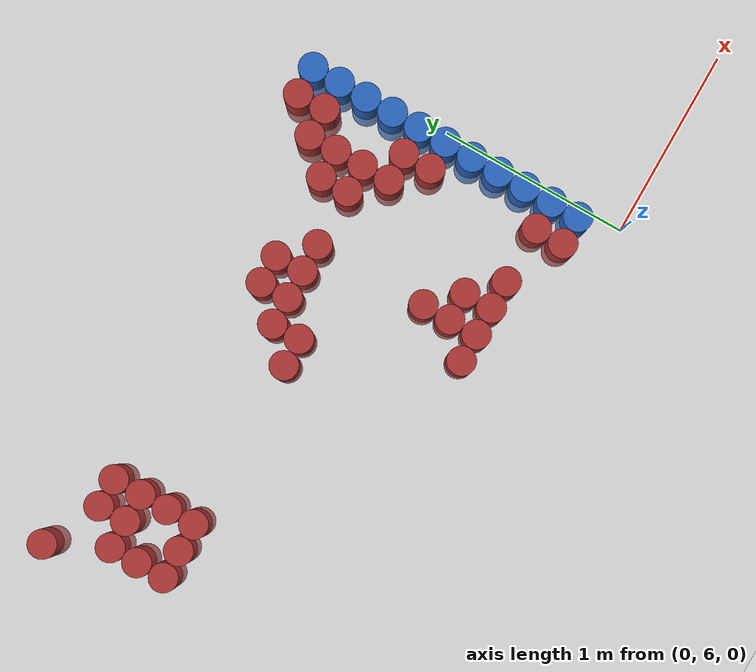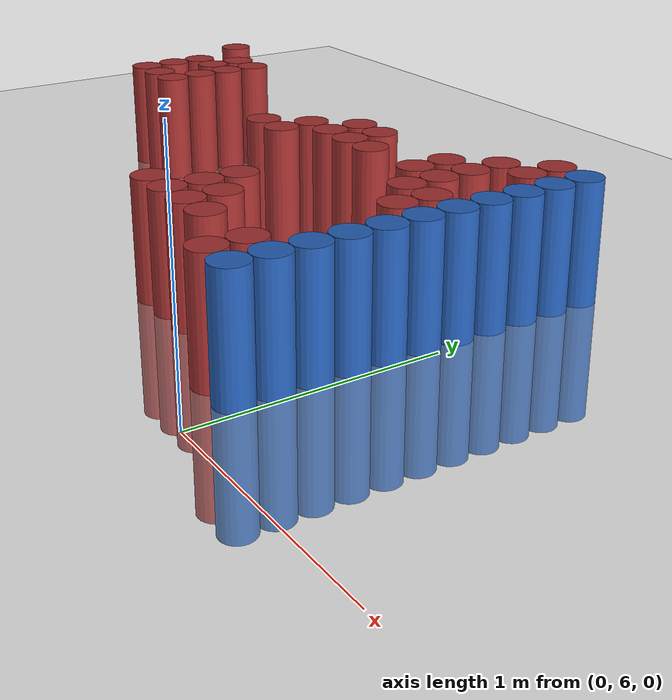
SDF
<sdf version="1.6">
 <world name="default">
  <model name="ground_plane">
   <static>1</static>
   <link name="link">
    <collision name="collision">
     <geometry><plane><normal>0 0 1</normal><size>100 100</size></plane></geometry>
     <surface><friction><ode><mu>100</mu><mu2>50</mu2></ode></friction></surface>
    </collision>
    <visual name="visual">
     <cast_shadows>0</cast_shadows>
     <geometry><plane><normal>0 0 1</normal><size>100 100</size></plane></geometry>
     <material>
      <script><uri>file://media/materials/scripts/gazebo.material</uri><name>Gazebo/Grey</name></script>
     </material>
    </visual>
   </link>
  </model>
  <model name="unit_cylinder_216">
   <static>1</static>
   <pose>-2.775000 7.725000 0.000000 0.000000 0.000000 0.000000</pose>
   <link name="link">
    <inertial>
     <mass>1</mass>
     <inertia><ixx>0.145833</ixx><ixy>0</ixy><ixz>0</ixz><iyy>0.145833</iyy><iyz>0</iyz><izz>0.125</izz></inertia>
    </inertial>
    <collision name="collision">
     <geometry><cylinder><radius>0.075000</radius><length>1</length></cylinder></geometry>
    </collision>
    <visual name="visual">
     <geometry><cylinder><radius>0.075000</radius><length>1</length></cylinder></geometry>
     <material>
      <ambient>0.648000 0.192000 0.192000 1</ambient>
      <diffuse>0.648000 0.192000 0.192000 1</diffuse>
     </material>
     <material>
      <script><name>Gazebo/Grey</name><uri>file://media/materials/scripts/gazebo.material</uri></script>
     </material>
    </visual>
   </link>
  </model>
  <model name="unit_cylinder_218">
   <static>1</static>
   <pose>-2.625000 7.125000 0.000000 0.000000 0.000000 0.000000</pose>
   <link name="link">
    <inertial>
     <mass>1</mass>
     <inertia><ixx>0.145833</ixx><ixy>0</ixy><ixz>0</ixz><iyy>0.145833</iyy><iyz>0</iyz><izz>0.125</izz></inertia>
    </inertial>
    <collision name="collision">
     <geometry><cylinder><radius>0.075000</radius><length>1</length></cylinder></geometry>
    </collision>
    <visual name="visual">
     <geometry><cylinder><radius>0.075000</radius><length>1</length></cylinder></geometry>
     <material>
      <ambient>0.648000 0.192000 0.192000 1</ambient>
      <diffuse>0.648000 0.192000 0.192000 1</diffuse>
     </material>
     <material>
      <script><name>Gazebo/Grey</name><uri>file://media/materials/scripts/gazebo.material</uri></script>
     </material>
    </visual>
   </link>
  </model>
  <model name="unit_cylinder_219">
   <static>1</static>
   <pose>-2.625000 7.275000 0.000000 0.000000 0.000000 0.000000</pose>
   <link name="link">
    <inertial>
     <mass>1</mass>
     <inertia><ixx>0.145833</ixx><ixy>0</ixy><ixz>0</ixz><iyy>0.145833</iyy><iyz>0</iyz><izz>0.125</izz></inertia>
    </inertial>
    <collision name="collision">
     <geometry><cylinder><radius>0.075000</radius><length>1</length></cylinder></geometry>
    </collision>
    <visual name="visual">
     <geometry><cylinder><radius>0.075000</radius><length>1</length></cylinder></geometry>
     <material>
      <ambient>0.648000 0.192000 0.192000 1</ambient>
      <diffuse>0.648000 0.192000 0.192000 1</diffuse>
     </material>
     <material>
      <script><name>Gazebo/Grey</name><uri>file://media/materials/scripts/gazebo.material</uri></script>
     </material>
    </visual>
   </link>
  </model>
  <model name="unit_cylinder_220">
   <static>1</static>
   <pose>-2.625000 7.425000 0.000000 0.000000 0.000000 0.000000</pose>
   <link name="link">
    <inertial>
     <mass>1</mass>
     <inertia><ixx>0.145833</ixx><ixy>0</ixy><ixz>0</ixz><iyy>0.145833</iyy><iyz>0</iyz><izz>0.125</izz></inertia>
    </inertial>
    <collision name="collision">
     <geometry><cylinder><radius>0.075000</radius><length>1</length></cylinder></geometry>
    </collision>
    <visual name="visual">
     <geometry><cylinder><radius>0.075000</radius><length>1</length></cylinder></geometry>
     <material>
      <ambient>0.648000 0.192000 0.192000 1</ambient>
      <diffuse>0.648000 0.192000 0.192000 1</diffuse>
     </material>
     <material>
      <script><name>Gazebo/Grey</name><uri>file://media/materials/scripts/gazebo.material</uri></script>
     </material>
    </visual>
   </link>
  </model>
  <model name="unit_cylinder_223">
   <static>1</static>
   <pose>-2.475000 7.125000 0.000000 0.000000 0.000000 0.000000</pose>
   <link name="link">
    <inertial>
     <mass>1</mass>
     <inertia><ixx>0.145833</ixx><ixy>0</ixy><ixz>0</ixz><iyy>0.145833</iyy><iyz>0</iyz><izz>0.125</izz></inertia>
    </inertial>
    <collision name="collision">
     <geometry><cylinder><radius>0.075000</radius><length>1</length></cylinder></geometry>
    </collision>
    <visual name="visual">
     <geometry><cylinder><radius>0.075000</radius><length>1</length></cylinder></geometry>
     <material>
      <ambient>0.648000 0.192000 0.192000 1</ambient>
      <diffuse>0.648000 0.192000 0.192000 1</diffuse>
     </material>
     <material>
      <script><name>Gazebo/Grey</name><uri>file://media/materials/scripts/gazebo.material</uri></script>
     </material>
    </visual>
   </link>
  </model>
  <model name="unit_cylinder_224">
   <static>1</static>
   <pose>-2.475000 7.425000 0.000000 0.000000 0.000000 0.000000</pose>
   <link name="link">
    <inertial>
     <mass>1</mass>
     <inertia><ixx>0.145833</ixx><ixy>0</ixy><ixz>0</ixz><iyy>0.145833</iyy><iyz>0</iyz><izz>0.125</izz></inertia>
    </inertial>
    <collision name="collision">
     <geometry><cylinder><radius>0.075000</radius><length>1</length></cylinder></geometry>
    </collision>
    <visual name="visual">
     <geometry><cylinder><radius>0.075000</radius><length>1</length></cylinder></geometry>
     <material>
      <ambient>0.648000 0.192000 0.192000 1</ambient>
      <diffuse>0.648000 0.192000 0.192000 1</diffuse>
     </material>
     <material>
      <script><name>Gazebo/Grey</name><uri>file://media/materials/scripts/gazebo.material</uri></script>
     </material>
    </visual>
   </link>
  </model>
  <model name="unit_cylinder_225">
   <static>1</static>
   <pose>-2.475000 7.575000 0.000000 0.000000 0.000000 0.000000</pose>
   <link name="link">
    <inertial>
     <mass>1</mass>
     <inertia><ixx>0.145833</ixx><ixy>0</ixy><ixz>0</ixz><iyy>0.145833</iyy><iyz>0</iyz><izz>0.125</izz></inertia>
    </inertial>
    <collision name="collision">
     <geometry><cylinder><radius>0.075000</radius><length>1</length></cylinder></geometry>
    </collision>
    <visual name="visual">
     <geometry><cylinder><radius>0.075000</radius><length>1</length></cylinder></geometry>
     <material>
      <ambient>0.648000 0.192000 0.192000 1</ambient>
      <diffuse>0.648000 0.192000 0.192000 1</diffuse>
     </material>
     <material>
      <script><name>Gazebo/Grey</name><uri>file://media/materials/scripts/gazebo.material</uri></script>
     </material>
    </visual>
   </link>
  </model>
  <model name="unit_cylinder_230">
   <static>1</static>
   <pose>-2.325000 7.125000 0.000000 0.000000 0.000000 0.000000</pose>
   <link name="link">
    <inertial>
     <mass>1</mass>
     <inertia><ixx>0.145833</ixx><ixy>0</ixy><ixz>0</ixz><iyy>0.145833</iyy><iyz>0</iyz><izz>0.125</izz></inertia>
    </inertial>
    <collision name="collision">
     <geometry><cylinder><radius>0.075000</radius><length>1</length></cylinder></geometry>
    </collision>
    <visual name="visual">
     <geometry><cylinder><radius>0.075000</radius><length>1</length></cylinder></geometry>
     <material>
      <ambient>0.648000 0.192000 0.192000 1</ambient>
      <diffuse>0.648000 0.192000 0.192000 1</diffuse>
     </material>
     <material>
      <script><name>Gazebo/Grey</name><uri>file://media/materials/scripts/gazebo.material</uri></script>
     </material>
    </visual>
   </link>
  </model>
  <model name="unit_cylinder_231">
   <static>1</static>
   <pose>-2.325000 7.275000 0.000000 0.000000 0.000000 0.000000</pose>
   <link name="link">
    <inertial>
     <mass>1</mass>
     <inertia><ixx>0.145833</ixx><ixy>0</ixy><ixz>0</ixz><iyy>0.145833</iyy><iyz>0</iyz><izz>0.125</izz></inertia>
    </inertial>
    <collision name="collision">
     <geometry><cylinder><radius>0.075000</radius><length>1</length></cylinder></geometry>
    </collision>
    <visual name="visual">
     <geometry><cylinder><radius>0.075000</radius><length>1</length></cylinder></geometry>
     <material>
      <ambient>0.648000 0.192000 0.192000 1</ambient>
      <diffuse>0.648000 0.192000 0.192000 1</diffuse>
     </material>
     <material>
      <script><name>Gazebo/Grey</name><uri>file://media/materials/scripts/gazebo.material</uri></script>
     </material>
    </visual>
   </link>
  </model>
  <model name="unit_cylinder_232">
   <static>1</static>
   <pose>-2.325000 7.425000 0.000000 0.000000 0.000000 0.000000</pose>
   <link name="link">
    <inertial>
     <mass>1</mass>
     <inertia><ixx>0.145833</ixx><ixy>0</ixy><ixz>0</ixz><iyy>0.145833</iyy><iyz>0</iyz><izz>0.125</izz></inertia>
    </inertial>
    <collision name="collision">
     <geometry><cylinder><radius>0.075000</radius><length>1</length></cylinder></geometry>
    </collision>
    <visual name="visual">
     <geometry><cylinder><radius>0.075000</radius><length>1</length></cylinder></geometry>
     <material>
      <ambient>0.648000 0.192000 0.192000 1</ambient>
      <diffuse>0.648000 0.192000 0.192000 1</diffuse>
     </material>
     <material>
      <script><name>Gazebo/Grey</name><uri>file://media/materials/scripts/gazebo.material</uri></script>
     </material>
    </visual>
   </link>
  </model>
  <model name="unit_cylinder_233">
   <static>1</static>
   <pose>-2.325000 7.575000 0.000000 0.000000 0.000000 0.000000</pose>
   <link name="link">
    <inertial>
     <mass>1</mass>
     <inertia><ixx>0.145833</ixx><ixy>0</ixy><ixz>0</ixz><iyy>0.145833</iyy><iyz>0</iyz><izz>0.125</izz></inertia>
    </inertial>
    <collision name="collision">
     <geometry><cylinder><radius>0.075000</radius><length>1</length></cylinder></geometry>
    </collision>
    <visual name="visual">
     <geometry><cylinder><radius>0.075000</radius><length>1</length></cylinder></geometry>
     <material>
      <ambient>0.648000 0.192000 0.192000 1</ambient>
      <diffuse>0.648000 0.192000 0.192000 1</diffuse>
     </material>
     <material>
      <script><name>Gazebo/Grey</name><uri>file://media/materials/scripts/gazebo.material</uri></script>
     </material>
    </visual>
   </link>
  </model>
  <model name="unit_cylinder_253">
   <static>1</static>
   <pose>-1.425000 7.125000 0.000000 0.000000 0.000000 0.000000</pose>
   <link name="link">
    <inertial>
     <mass>1</mass>
     <inertia><ixx>0.145833</ixx><ixy>0</ixy><ixz>0</ixz><iyy>0.145833</iyy><iyz>0</iyz><izz>0.125</izz></inertia>
    </inertial>
    <collision name="collision">
     <geometry><cylinder><radius>0.075000</radius><length>1</length></cylinder></geometry>
    </collision>
    <visual name="visual">
     <geometry><cylinder><radius>0.075000</radius><length>1</length></cylinder></geometry>
     <material>
      <ambient>0.648000 0.192000 0.192000 1</ambient>
      <diffuse>0.648000 0.192000 0.192000 1</diffuse>
     </material>
     <material>
      <script><name>Gazebo/Grey</name><uri>file://media/materials/scripts/gazebo.material</uri></script>
     </material>
    </visual>
   </link>
  </model>
  <model name="unit_cylinder_256">
   <static>1</static>
   <pose>-1.275000 7.125000 0.000000 0.000000 0.000000 0.000000</pose>
   <link name="link">
    <inertial>
     <mass>1</mass>
     <inertia><ixx>0.145833</ixx><ixy>0</ixy><ixz>0</ixz><iyy>0.145833</iyy><iyz>0</iyz><izz>0.125</izz></inertia>
    </inertial>
    <collision name="collision">
     <geometry><cylinder><radius>0.075000</radius><length>1</length></cylinder></geometry>
    </collision>
    <visual name="visual">
     <geometry><cylinder><radius>0.075000</radius><length>1</length></cylinder></geometry>
     <material>
      <ambient>0.648000 0.192000 0.192000 1</ambient>
      <diffuse>0.648000 0.192000 0.192000 1</diffuse>
     </material>
     <material>
      <script><name>Gazebo/Grey</name><uri>file://media/materials/scripts/gazebo.material</uri></script>
     </material>
    </visual>
   </link>
  </model>
  <model name="unit_cylinder_257">
   <static>1</static>
   <pose>-1.275000 7.275000 0.000000 0.000000 0.000000 0.000000</pose>
   <link name="link">
    <inertial>
     <mass>1</mass>
     <inertia><ixx>0.145833</ixx><ixy>0</ixy><ixz>0</ixz><iyy>0.145833</iyy><iyz>0</iyz><izz>0.125</izz></inertia>
    </inertial>
    <collision name="collision">
     <geometry><cylinder><radius>0.075000</radius><length>1</length></cylinder></geometry>
    </collision>
    <visual name="visual">
     <geometry><cylinder><radius>0.075000</radius><length>1</length></cylinder></geometry>
     <material>
      <ambient>0.648000 0.192000 0.192000 1</ambient>
      <diffuse>0.648000 0.192000 0.192000 1</diffuse>
     </material>
     <material>
      <script><name>Gazebo/Grey</name><uri>file://media/materials/scripts/gazebo.material</uri></script>
     </material>
    </visual>
   </link>
  </model>
  <model name="unit_cylinder_261">
   <static>1</static>
   <pose>-1.125000 7.275000 0.000000 0.000000 0.000000 0.000000</pose>
   <link name="link">
    <inertial>
     <mass>1</mass>
     <inertia><ixx>0.145833</ixx><ixy>0</ixy><ixz>0</ixz><iyy>0.145833</iyy><iyz>0</iyz><izz>0.125</izz></inertia>
    </inertial>
    <collision name="collision">
     <geometry><cylinder><radius>0.075000</radius><length>1</length></cylinder></geometry>
    </collision>
    <visual name="visual">
     <geometry><cylinder><radius>0.075000</radius><length>1</length></cylinder></geometry>
     <material>
      <ambient>0.648000 0.192000 0.192000 1</ambient>
      <diffuse>0.648000 0.192000 0.192000 1</diffuse>
     </material>
     <material>
      <script><name>Gazebo/Grey</name><uri>file://media/materials/scripts/gazebo.material</uri></script>
     </material>
    </visual>
   </link>
  </model>
  <model name="unit_cylinder_262">
   <static>1</static>
   <pose>-1.125000 7.425000 0.000000 0.000000 0.000000 0.000000</pose>
   <link name="link">
    <inertial>
     <mass>1</mass>
     <inertia><ixx>0.145833</ixx><ixy>0</ixy><ixz>0</ixz><iyy>0.145833</iyy><iyz>0</iyz><izz>0.125</izz></inertia>
    </inertial>
    <collision name="collision">
     <geometry><cylinder><radius>0.075000</radius><length>1</length></cylinder></geometry>
    </collision>
    <visual name="visual">
     <geometry><cylinder><radius>0.075000</radius><length>1</length></cylinder></geometry>
     <material>
      <ambient>0.648000 0.192000 0.192000 1</ambient>
      <diffuse>0.648000 0.192000 0.192000 1</diffuse>
     </material>
     <material>
      <script><name>Gazebo/Grey</name><uri>file://media/materials/scripts/gazebo.material</uri></script>
     </material>
    </visual>
   </link>
  </model>
  <model name="unit_cylinder_266">
   <static>1</static>
   <pose>-0.975000 6.375000 0.000000 0.000000 0.000000 0.000000</pose>
   <link name="link">
    <inertial>
     <mass>1</mass>
     <inertia><ixx>0.145833</ixx><ixy>0</ixy><ixz>0</ixz><iyy>0.145833</iyy><iyz>0</iyz><izz>0.125</izz></inertia>
    </inertial>
    <collision name="collision">
     <geometry><cylinder><radius>0.075000</radius><length>1</length></cylinder></geometry>
    </collision>
    <visual name="visual">
     <geometry><cylinder><radius>0.075000</radius><length>1</length></cylinder></geometry>
     <material>
      <ambient>0.648000 0.192000 0.192000 1</ambient>
      <diffuse>0.648000 0.192000 0.192000 1</diffuse>
     </material>
     <material>
      <script><name>Gazebo/Grey</name><uri>file://media/materials/scripts/gazebo.material</uri></script>
     </material>
    </visual>
   </link>
  </model>
  <model name="unit_cylinder_267">
   <static>1</static>
   <pose>-0.975000 7.275000 0.000000 0.000000 0.000000 0.000000</pose>
   <link name="link">
    <inertial>
     <mass>1</mass>
     <inertia><ixx>0.145833</ixx><ixy>0</ixy><ixz>0</ixz><iyy>0.145833</iyy><iyz>0</iyz><izz>0.125</izz></inertia>
    </inertial>
    <collision name="collision">
     <geometry><cylinder><radius>0.075000</radius><length>1</length></cylinder></geometry>
    </collision>
    <visual name="visual">
     <geometry><cylinder><radius>0.075000</radius><length>1</length></cylinder></geometry>
     <material>
      <ambient>0.648000 0.192000 0.192000 1</ambient>
      <diffuse>0.648000 0.192000 0.192000 1</diffuse>
     </material>
     <material>
      <script><name>Gazebo/Grey</name><uri>file://media/materials/scripts/gazebo.material</uri></script>
     </material>
    </visual>
   </link>
  </model>
  <model name="unit_cylinder_268">
   <static>1</static>
   <pose>-0.975000 7.425000 0.000000 0.000000 0.000000 0.000000</pose>
   <link name="link">
    <inertial>
     <mass>1</mass>
     <inertia><ixx>0.145833</ixx><ixy>0</ixy><ixz>0</ixz><iyy>0.145833</iyy><iyz>0</iyz><izz>0.125</izz></inertia>
    </inertial>
    <collision name="collision">
     <geometry><cylinder><radius>0.075000</radius><length>1</length></cylinder></geometry>
    </collision>
    <visual name="visual">
     <geometry><cylinder><radius>0.075000</radius><length>1</length></cylinder></geometry>
     <material>
      <ambient>0.648000 0.192000 0.192000 1</ambient>
      <diffuse>0.648000 0.192000 0.192000 1</diffuse>
     </material>
     <material>
      <script><name>Gazebo/Grey</name><uri>file://media/materials/scripts/gazebo.material</uri></script>
     </material>
    </visual>
   </link>
  </model>
  <model name="unit_cylinder_274">
   <static>1</static>
   <pose>-0.825000 6.375000 0.000000 0.000000 0.000000 0.000000</pose>
   <link name="link">
    <inertial>
     <mass>1</mass>
     <inertia><ixx>0.145833</ixx><ixy>0</ixy><ixz>0</ixz><iyy>0.145833</iyy><iyz>0</iyz><izz>0.125</izz></inertia>
    </inertial>
    <collision name="collision">
     <geometry><cylinder><radius>0.075000</radius><length>1</length></cylinder></geometry>
    </collision>
    <visual name="visual">
     <geometry><cylinder><radius>0.075000</radius><length>1</length></cylinder></geometry>
     <material>
      <ambient>0.648000 0.192000 0.192000 1</ambient>
      <diffuse>0.648000 0.192000 0.192000 1</diffuse>
     </material>
     <material>
      <script><name>Gazebo/Grey</name><uri>file://media/materials/scripts/gazebo.material</uri></script>
     </material>
    </visual>
   </link>
  </model>
  <model name="unit_cylinder_275">
   <static>1</static>
   <pose>-0.825000 6.525000 0.000000 0.000000 0.000000 0.000000</pose>
   <link name="link">
    <inertial>
     <mass>1</mass>
     <inertia><ixx>0.145833</ixx><ixy>0</ixy><ixz>0</ixz><iyy>0.145833</iyy><iyz>0</iyz><izz>0.125</izz></inertia>
    </inertial>
    <collision name="collision">
     <geometry><cylinder><radius>0.075000</radius><length>1</length></cylinder></geometry>
    </collision>
    <visual name="visual">
     <geometry><cylinder><radius>0.075000</radius><length>1</length></cylinder></geometry>
     <material>
      <ambient>0.648000 0.192000 0.192000 1</ambient>
      <diffuse>0.648000 0.192000 0.192000 1</diffuse>
     </material>
     <material>
      <script><name>Gazebo/Grey</name><uri>file://media/materials/scripts/gazebo.material</uri></script>
     </material>
    </visual>
   </link>
  </model>
  <model name="unit_cylinder_276">
   <static>1</static>
   <pose>-0.825000 6.675000 0.000000 0.000000 0.000000 0.000000</pose>
   <link name="link">
    <inertial>
     <mass>1</mass>
     <inertia><ixx>0.145833</ixx><ixy>0</ixy><ixz>0</ixz><iyy>0.145833</iyy><iyz>0</iyz><izz>0.125</izz></inertia>
    </inertial>
    <collision name="collision">
     <geometry><cylinder><radius>0.075000</radius><length>1</length></cylinder></geometry>
    </collision>
    <visual name="visual">
     <geometry><cylinder><radius>0.075000</radius><length>1</length></cylinder></geometry>
     <material>
      <ambient>0.648000 0.192000 0.192000 1</ambient>
      <diffuse>0.648000 0.192000 0.192000 1</diffuse>
     </material>
     <material>
      <script><name>Gazebo/Grey</name><uri>file://media/materials/scripts/gazebo.material</uri></script>
     </material>
    </visual>
   </link>
  </model>
  <model name="unit_cylinder_277">
   <static>1</static>
   <pose>-0.825000 7.275000 0.000000 0.000000 0.000000 0.000000</pose>
   <link name="link">
    <inertial>
     <mass>1</mass>
     <inertia><ixx>0.145833</ixx><ixy>0</ixy><ixz>0</ixz><iyy>0.145833</iyy><iyz>0</iyz><izz>0.125</izz></inertia>
    </inertial>
    <collision name="collision">
     <geometry><cylinder><radius>0.075000</radius><length>1</length></cylinder></geometry>
    </collision>
    <visual name="visual">
     <geometry><cylinder><radius>0.075000</radius><length>1</length></cylinder></geometry>
     <material>
      <ambient>0.648000 0.192000 0.192000 1</ambient>
      <diffuse>0.648000 0.192000 0.192000 1</diffuse>
     </material>
     <material>
      <script><name>Gazebo/Grey</name><uri>file://media/materials/scripts/gazebo.material</uri></script>
     </material>
    </visual>
   </link>
  </model>
  <model name="unit_cylinder_282">
   <static>1</static>
   <pose>-0.675000 6.375000 0.000000 0.000000 0.000000 0.000000</pose>
   <link name="link">
    <inertial>
     <mass>1</mass>
     <inertia><ixx>0.145833</ixx><ixy>0</ixy><ixz>0</ixz><iyy>0.145833</iyy><iyz>0</iyz><izz>0.125</izz></inertia>
    </inertial>
    <collision name="collision">
     <geometry><cylinder><radius>0.075000</radius><length>1</length></cylinder></geometry>
    </collision>
    <visual name="visual">
     <geometry><cylinder><radius>0.075000</radius><length>1</length></cylinder></geometry>
     <material>
      <ambient>0.648000 0.192000 0.192000 1</ambient>
      <diffuse>0.648000 0.192000 0.192000 1</diffuse>
     </material>
     <material>
      <script><name>Gazebo/Grey</name><uri>file://media/materials/scripts/gazebo.material</uri></script>
     </material>
    </visual>
   </link>
  </model>
  <model name="unit_cylinder_283">
   <static>1</static>
   <pose>-0.675000 6.525000 0.000000 0.000000 0.000000 0.000000</pose>
   <link name="link">
    <inertial>
     <mass>1</mass>
     <inertia><ixx>0.145833</ixx><ixy>0</ixy><ixz>0</ixz><iyy>0.145833</iyy><iyz>0</iyz><izz>0.125</izz></inertia>
    </inertial>
    <collision name="collision">
     <geometry><cylinder><radius>0.075000</radius><length>1</length></cylinder></geometry>
    </collision>
    <visual name="visual">
     <geometry><cylinder><radius>0.075000</radius><length>1</length></cylinder></geometry>
     <material>
      <ambient>0.648000 0.192000 0.192000 1</ambient>
      <diffuse>0.648000 0.192000 0.192000 1</diffuse>
     </material>
     <material>
      <script><name>Gazebo/Grey</name><uri>file://media/materials/scripts/gazebo.material</uri></script>
     </material>
    </visual>
   </link>
  </model>
  <model name="unit_cylinder_288">
   <static>1</static>
   <pose>-0.525000 6.375000 0.000000 0.000000 0.000000 0.000000</pose>
   <link name="link">
    <inertial>
     <mass>1</mass>
     <inertia><ixx>0.145833</ixx><ixy>0</ixy><ixz>0</ixz><iyy>0.145833</iyy><iyz>0</iyz><izz>0.125</izz></inertia>
    </inertial>
    <collision name="collision">
     <geometry><cylinder><radius>0.075000</radius><length>1</length></cylinder></geometry>
    </collision>
    <visual name="visual">
     <geometry><cylinder><radius>0.075000</radius><length>1</length></cylinder></geometry>
     <material>
      <ambient>0.648000 0.192000 0.192000 1</ambient>
      <diffuse>0.648000 0.192000 0.192000 1</diffuse>
     </material>
     <material>
      <script><name>Gazebo/Grey</name><uri>file://media/materials/scripts/gazebo.material</uri></script>
     </material>
    </visual>
   </link>
  </model>
  <model name="unit_cylinder_289">
   <static>1</static>
   <pose>-0.525000 7.275000 0.000000 0.000000 0.000000 0.000000</pose>
   <link name="link">
    <inertial>
     <mass>1</mass>
     <inertia><ixx>0.145833</ixx><ixy>0</ixy><ixz>0</ixz><iyy>0.145833</iyy><iyz>0</iyz><izz>0.125</izz></inertia>
    </inertial>
    <collision name="collision">
     <geometry><cylinder><radius>0.075000</radius><length>1</length></cylinder></geometry>
    </collision>
    <visual name="visual">
     <geometry><cylinder><radius>0.075000</radius><length>1</length></cylinder></geometry>
     <material>
      <ambient>0.648000 0.192000 0.192000 1</ambient>
      <diffuse>0.648000 0.192000 0.192000 1</diffuse>
     </material>
     <material>
      <script><name>Gazebo/Grey</name><uri>file://media/materials/scripts/gazebo.material</uri></script>
     </material>
    </visual>
   </link>
  </model>
  <model name="unit_cylinder_290">
   <static>1</static>
   <pose>-0.525000 7.425000 0.000000 0.000000 0.000000 0.000000</pose>
   <link name="link">
    <inertial>
     <mass>1</mass>
     <inertia><ixx>0.145833</ixx><ixy>0</ixy><ixz>0</ixz><iyy>0.145833</iyy><iyz>0</iyz><izz>0.125</izz></inertia>
    </inertial>
    <collision name="collision">
     <geometry><cylinder><radius>0.075000</radius><length>1</length></cylinder></geometry>
    </collision>
    <visual name="visual">
     <geometry><cylinder><radius>0.075000</radius><length>1</length></cylinder></geometry>
     <material>
      <ambient>0.648000 0.192000 0.192000 1</ambient>
      <diffuse>0.648000 0.192000 0.192000 1</diffuse>
     </material>
     <material>
      <script><name>Gazebo/Grey</name><uri>file://media/materials/scripts/gazebo.material</uri></script>
     </material>
    </visual>
   </link>
  </model>
  <model name="unit_cylinder_292">
   <static>1</static>
   <pose>-0.375000 7.125000 0.000000 0.000000 0.000000 0.000000</pose>
   <link name="link">
    <inertial>
     <mass>1</mass>
     <inertia><ixx>0.145833</ixx><ixy>0</ixy><ixz>0</ixz><iyy>0.145833</iyy><iyz>0</iyz><izz>0.125</izz></inertia>
    </inertial>
    <collision name="collision">
     <geometry><cylinder><radius>0.075000</radius><length>1</length></cylinder></geometry>
    </collision>
    <visual name="visual">
     <geometry><cylinder><radius>0.075000</radius><length>1</length></cylinder></geometry>
     <material>
      <ambient>0.648000 0.192000 0.192000 1</ambient>
      <diffuse>0.648000 0.192000 0.192000 1</diffuse>
     </material>
     <material>
      <script><name>Gazebo/Grey</name><uri>file://media/materials/scripts/gazebo.material</uri></script>
     </material>
    </visual>
   </link>
  </model>
  <model name="unit_cylinder_293">
   <static>1</static>
   <pose>-0.375000 7.275000 0.000000 0.000000 0.000000 0.000000</pose>
   <link name="link">
    <inertial>
     <mass>1</mass>
     <inertia><ixx>0.145833</ixx><ixy>0</ixy><ixz>0</ixz><iyy>0.145833</iyy><iyz>0</iyz><izz>0.125</izz></inertia>
    </inertial>
    <collision name="collision">
     <geometry><cylinder><radius>0.075000</radius><length>1</length></cylinder></geometry>
    </collision>
    <visual name="visual">
     <geometry><cylinder><radius>0.075000</radius><length>1</length></cylinder></geometry>
     <material>
      <ambient>0.648000 0.192000 0.192000 1</ambient>
      <diffuse>0.648000 0.192000 0.192000 1</diffuse>
     </material>
     <material>
      <script><name>Gazebo/Grey</name><uri>file://media/materials/scripts/gazebo.material</uri></script>
     </material>
    </visual>
   </link>
  </model>
  <model name="unit_cylinder_294">
   <static>1</static>
   <pose>-0.375000 7.425000 0.000000 0.000000 0.000000 0.000000</pose>
   <link name="link">
    <inertial>
     <mass>1</mass>
     <inertia><ixx>0.145833</ixx><ixy>0</ixy><ixz>0</ixz><iyy>0.145833</iyy><iyz>0</iyz><izz>0.125</izz></inertia>
    </inertial>
    <collision name="collision">
     <geometry><cylinder><radius>0.075000</radius><length>1</length></cylinder></geometry>
    </collision>
    <visual name="visual">
     <geometry><cylinder><radius>0.075000</radius><length>1</length></cylinder></geometry>
     <material>
      <ambient>0.648000 0.192000 0.192000 1</ambient>
      <diffuse>0.648000 0.192000 0.192000 1</diffuse>
     </material>
     <material>
      <script><name>Gazebo/Grey</name><uri>file://media/materials/scripts/gazebo.material</uri></script>
     </material>
    </visual>
   </link>
  </model>
  <model name="unit_cylinder_295">
   <static>1</static>
   <pose>-0.375000 7.575000 0.000000 0.000000 0.000000 0.000000</pose>
   <link name="link">
    <inertial>
     <mass>1</mass>
     <inertia><ixx>0.145833</ixx><ixy>0</ixy><ixz>0</ixz><iyy>0.145833</iyy><iyz>0</iyz><izz>0.125</izz></inertia>
    </inertial>
    <collision name="collision">
     <geometry><cylinder><radius>0.075000</radius><length>1</length></cylinder></geometry>
    </collision>
    <visual name="visual">
     <geometry><cylinder><radius>0.075000</radius><length>1</length></cylinder></geometry>
     <material>
      <ambient>0.648000 0.192000 0.192000 1</ambient>
      <diffuse>0.648000 0.192000 0.192000 1</diffuse>
     </material>
     <material>
      <script><name>Gazebo/Grey</name><uri>file://media/materials/scripts/gazebo.material</uri></script>
     </material>
    </visual>
   </link>
  </model>
  <model name="unit_cylinder_299">
   <static>1</static>
   <pose>-0.225000 6.225000 0.000000 0.000000 0.000000 0.000000</pose>
   <link name="link">
    <inertial>
     <mass>1</mass>
     <inertia><ixx>0.145833</ixx><ixy>0</ixy><ixz>0</ixz><iyy>0.145833</iyy><iyz>0</iyz><izz>0.125</izz></inertia>
    </inertial>
    <collision name="collision">
     <geometry><cylinder><radius>0.075000</radius><length>1</length></cylinder></geometry>
    </collision>
    <visual name="visual">
     <geometry><cylinder><radius>0.075000</radius><length>1</length></cylinder></geometry>
     <material>
      <ambient>0.648000 0.192000 0.192000 1</ambient>
      <diffuse>0.648000 0.192000 0.192000 1</diffuse>
     </material>
     <material>
      <script><name>Gazebo/Grey</name><uri>file://media/materials/scripts/gazebo.material</uri></script>
     </material>
    </visual>
   </link>
  </model>
  <model name="unit_cylinder_300">
   <static>1</static>
   <pose>-0.225000 6.375000 0.000000 0.000000 0.000000 0.000000</pose>
   <link name="link">
    <inertial>
     <mass>1</mass>
     <inertia><ixx>0.145833</ixx><ixy>0</ixy><ixz>0</ixz><iyy>0.145833</iyy><iyz>0</iyz><izz>0.125</izz></inertia>
    </inertial>
    <collision name="collision">
     <geometry><cylinder><radius>0.075000</radius><length>1</length></cylinder></geometry>
    </collision>
    <visual name="visual">
     <geometry><cylinder><radius>0.075000</radius><length>1</length></cylinder></geometry>
     <material>
      <ambient>0.648000 0.192000 0.192000 1</ambient>
      <diffuse>0.648000 0.192000 0.192000 1</diffuse>
     </material>
     <material>
      <script><name>Gazebo/Grey</name><uri>file://media/materials/scripts/gazebo.material</uri></script>
     </material>
    </visual>
   </link>
  </model>
  <model name="unit_cylinder_301">
   <static>1</static>
   <pose>-0.225000 6.975000 0.000000 0.000000 0.000000 0.000000</pose>
   <link name="link">
    <inertial>
     <mass>1</mass>
     <inertia><ixx>0.145833</ixx><ixy>0</ixy><ixz>0</ixz><iyy>0.145833</iyy><iyz>0</iyz><izz>0.125</izz></inertia>
    </inertial>
    <collision name="collision">
     <geometry><cylinder><radius>0.075000</radius><length>1</length></cylinder></geometry>
    </collision>
    <visual name="visual">
     <geometry><cylinder><radius>0.075000</radius><length>1</length></cylinder></geometry>
     <material>
      <ambient>0.648000 0.192000 0.192000 1</ambient>
      <diffuse>0.648000 0.192000 0.192000 1</diffuse>
     </material>
     <material>
      <script><name>Gazebo/Grey</name><uri>file://media/materials/scripts/gazebo.material</uri></script>
     </material>
    </visual>
   </link>
  </model>
  <model name="unit_cylinder_302">
   <static>1</static>
   <pose>-0.225000 7.125000 0.000000 0.000000 0.000000 0.000000</pose>
   <link name="link">
    <inertial>
     <mass>1</mass>
     <inertia><ixx>0.145833</ixx><ixy>0</ixy><ixz>0</ixz><iyy>0.145833</iyy><iyz>0</iyz><izz>0.125</izz></inertia>
    </inertial>
    <collision name="collision">
     <geometry><cylinder><radius>0.075000</radius><length>1</length></cylinder></geometry>
    </collision>
    <visual name="visual">
     <geometry><cylinder><radius>0.075000</radius><length>1</length></cylinder></geometry>
     <material>
      <ambient>0.648000 0.192000 0.192000 1</ambient>
      <diffuse>0.648000 0.192000 0.192000 1</diffuse>
     </material>
     <material>
      <script><name>Gazebo/Grey</name><uri>file://media/materials/scripts/gazebo.material</uri></script>
     </material>
    </visual>
   </link>
  </model>
  <model name="unit_cylinder_303">
   <static>1</static>
   <pose>-0.225000 7.575000 0.000000 0.000000 0.000000 0.000000</pose>
   <link name="link">
    <inertial>
     <mass>1</mass>
     <inertia><ixx>0.145833</ixx><ixy>0</ixy><ixz>0</ixz><iyy>0.145833</iyy><iyz>0</iyz><izz>0.125</izz></inertia>
    </inertial>
    <collision name="collision">
     <geometry><cylinder><radius>0.075000</radius><length>1</length></cylinder></geometry>
    </collision>
    <visual name="visual">
     <geometry><cylinder><radius>0.075000</radius><length>1</length></cylinder></geometry>
     <material>
      <ambient>0.648000 0.192000 0.192000 1</ambient>
      <diffuse>0.648000 0.192000 0.192000 1</diffuse>
     </material>
     <material>
      <script><name>Gazebo/Grey</name><uri>file://media/materials/scripts/gazebo.material</uri></script>
     </material>
    </visual>
   </link>
  </model>
  <model name="unit_cylinder_304">
   <static>1</static>
   <pose>-0.225000 7.725000 0.000000 0.000000 0.000000 0.000000</pose>
   <link name="link">
    <inertial>
     <mass>1</mass>
     <inertia><ixx>0.145833</ixx><ixy>0</ixy><ixz>0</ixz><iyy>0.145833</iyy><iyz>0</iyz><izz>0.125</izz></inertia>
    </inertial>
    <collision name="collision">
     <geometry><cylinder><radius>0.075000</radius><length>1</length></cylinder></geometry>
    </collision>
    <visual name="visual">
     <geometry><cylinder><radius>0.075000</radius><length>1</length></cylinder></geometry>
     <material>
      <ambient>0.648000 0.192000 0.192000 1</ambient>
      <diffuse>0.648000 0.192000 0.192000 1</diffuse>
     </material>
     <material>
      <script><name>Gazebo/Grey</name><uri>file://media/materials/scripts/gazebo.material</uri></script>
     </material>
    </visual>
   </link>
  </model>
  <model name="unit_cylinder_320">
   <static>1</static>
   <pose>-0.075000 6.225000 0.000000 0.000000 0.000000 0.000000</pose>
   <link name="link">
    <inertial>
     <mass>1</mass>
     <inertia><ixx>0.145833</ixx><ixy>0</ixy><ixz>0</ixz><iyy>0.145833</iyy><iyz>0</iyz><izz>0.125</izz></inertia>
    </inertial>
    <collision name="collision">
     <geometry><cylinder><radius>0.075000</radius><length>1</length></cylinder></geometry>
    </collision>
    <visual name="visual">
     <geometry><cylinder><radius>0.075000</radius><length>1</length></cylinder></geometry>
     <material>
      <ambient>0.152000 0.379000 0.720000 1</ambient>
      <diffuse>0.152000 0.379000 0.720000 1</diffuse>
     </material>
     <material>
      <script><name>Gazebo/Grey</name><uri>file://media/materials/scripts/gazebo.material</uri></script>
     </material>
    </visual>
   </link>
  </model>
  <model name="unit_cylinder_321">
   <static>1</static>
   <pose>-0.075000 6.375000 0.000000 0.000000 0.000000 0.000000</pose>
   <link name="link">
    <inertial>
     <mass>1</mass>
     <inertia><ixx>0.145833</ixx><ixy>0</ixy><ixz>0</ixz><iyy>0.145833</iyy><iyz>0</iyz><izz>0.125</izz></inertia>
    </inertial>
    <collision name="collision">
     <geometry><cylinder><radius>0.075000</radius><length>1</length></cylinder></geometry>
    </collision>
    <visual name="visual">
     <geometry><cylinder><radius>0.075000</radius><length>1</length></cylinder></geometry>
     <material>
      <ambient>0.152000 0.379000 0.720000 1</ambient>
      <diffuse>0.152000 0.379000 0.720000 1</diffuse>
     </material>
     <material>
      <script><name>Gazebo/Grey</name><uri>file://media/materials/scripts/gazebo.material</uri></script>
     </material>
    </visual>
   </link>
  </model>
  <model name="unit_cylinder_322">
   <static>1</static>
   <pose>-0.075000 6.525000 0.000000 0.000000 0.000000 0.000000</pose>
   <link name="link">
    <inertial>
     <mass>1</mass>
     <inertia><ixx>0.145833</ixx><ixy>0</ixy><ixz>0</ixz><iyy>0.145833</iyy><iyz>0</iyz><izz>0.125</izz></inertia>
    </inertial>
    <collision name="collision">
     <geometry><cylinder><radius>0.075000</radius><length>1</length></cylinder></geometry>
    </collision>
    <visual name="visual">
     <geometry><cylinder><radius>0.075000</radius><length>1</length></cylinder></geometry>
     <material>
      <ambient>0.152000 0.379000 0.720000 1</ambient>
      <diffuse>0.152000 0.379000 0.720000 1</diffuse>
     </material>
     <material>
      <script><name>Gazebo/Grey</name><uri>file://media/materials/scripts/gazebo.material</uri></script>
     </material>
    </visual>
   </link>
  </model>
  <model name="unit_cylinder_323">
   <static>1</static>
   <pose>-0.075000 6.675000 0.000000 0.000000 0.000000 0.000000</pose>
   <link name="link">
    <inertial>
     <mass>1</mass>
     <inertia><ixx>0.145833</ixx><ixy>0</ixy><ixz>0</ixz><iyy>0.145833</iyy><iyz>0</iyz><izz>0.125</izz></inertia>
    </inertial>
    <collision name="collision">
     <geometry><cylinder><radius>0.075000</radius><length>1</length></cylinder></geometry>
    </collision>
    <visual name="visual">
     <geometry><cylinder><radius>0.075000</radius><length>1</length></cylinder></geometry>
     <material>
      <ambient>0.152000 0.379000 0.720000 1</ambient>
      <diffuse>0.152000 0.379000 0.720000 1</diffuse>
     </material>
     <material>
      <script><name>Gazebo/Grey</name><uri>file://media/materials/scripts/gazebo.material</uri></script>
     </material>
    </visual>
   </link>
  </model>
  <model name="unit_cylinder_324">
   <static>1</static>
   <pose>-0.075000 6.825000 0.000000 0.000000 0.000000 0.000000</pose>
   <link name="link">
    <inertial>
     <mass>1</mass>
     <inertia><ixx>0.145833</ixx><ixy>0</ixy><ixz>0</ixz><iyy>0.145833</iyy><iyz>0</iyz><izz>0.125</izz></inertia>
    </inertial>
    <collision name="collision">
     <geometry><cylinder><radius>0.075000</radius><length>1</length></cylinder></geometry>
    </collision>
    <visual name="visual">
     <geometry><cylinder><radius>0.075000</radius><length>1</length></cylinder></geometry>
     <material>
      <ambient>0.152000 0.379000 0.720000 1</ambient>
      <diffuse>0.152000 0.379000 0.720000 1</diffuse>
     </material>
     <material>
      <script><name>Gazebo/Grey</name><uri>file://media/materials/scripts/gazebo.material</uri></script>
     </material>
    </visual>
   </link>
  </model>
  <model name="unit_cylinder_325">
   <static>1</static>
   <pose>-0.075000 6.975000 0.000000 0.000000 0.000000 0.000000</pose>
   <link name="link">
    <inertial>
     <mass>1</mass>
     <inertia><ixx>0.145833</ixx><ixy>0</ixy><ixz>0</ixz><iyy>0.145833</iyy><iyz>0</iyz><izz>0.125</izz></inertia>
    </inertial>
    <collision name="collision">
     <geometry><cylinder><radius>0.075000</radius><length>1</length></cylinder></geometry>
    </collision>
    <visual name="visual">
     <geometry><cylinder><radius>0.075000</radius><length>1</length></cylinder></geometry>
     <material>
      <ambient>0.152000 0.379000 0.720000 1</ambient>
      <diffuse>0.152000 0.379000 0.720000 1</diffuse>
     </material>
     <material>
      <script><name>Gazebo/Grey</name><uri>file://media/materials/scripts/gazebo.material</uri></script>
     </material>
    </visual>
   </link>
  </model>
  <model name="unit_cylinder_326">
   <static>1</static>
   <pose>-0.075000 7.125000 0.000000 0.000000 0.000000 0.000000</pose>
   <link name="link">
    <inertial>
     <mass>1</mass>
     <inertia><ixx>0.145833</ixx><ixy>0</ixy><ixz>0</ixz><iyy>0.145833</iyy><iyz>0</iyz><izz>0.125</izz></inertia>
    </inertial>
    <collision name="collision">
     <geometry><cylinder><radius>0.075000</radius><length>1</length></cylinder></geometry>
    </collision>
    <visual name="visual">
     <geometry><cylinder><radius>0.075000</radius><length>1</length></cylinder></geometry>
     <material>
      <ambient>0.152000 0.379000 0.720000 1</ambient>
      <diffuse>0.152000 0.379000 0.720000 1</diffuse>
     </material>
     <material>
      <script><name>Gazebo/Grey</name><uri>file://media/materials/scripts/gazebo.material</uri></script>
     </material>
    </visual>
   </link>
  </model>
  <model name="unit_cylinder_327">
   <static>1</static>
   <pose>-0.075000 7.275000 0.000000 0.000000 0.000000 0.000000</pose>
   <link name="link">
    <inertial>
     <mass>1</mass>
     <inertia><ixx>0.145833</ixx><ixy>0</ixy><ixz>0</ixz><iyy>0.145833</iyy><iyz>0</iyz><izz>0.125</izz></inertia>
    </inertial>
    <collision name="collision">
     <geometry><cylinder><radius>0.075000</radius><length>1</length></cylinder></geometry>
    </collision>
    <visual name="visual">
     <geometry><cylinder><radius>0.075000</radius><length>1</length></cylinder></geometry>
     <material>
      <ambient>0.152000 0.379000 0.720000 1</ambient>
      <diffuse>0.152000 0.379000 0.720000 1</diffuse>
     </material>
     <material>
      <script><name>Gazebo/Grey</name><uri>file://media/materials/scripts/gazebo.material</uri></script>
     </material>
    </visual>
   </link>
  </model>
  <model name="unit_cylinder_328">
   <static>1</static>
   <pose>-0.075000 7.425000 0.000000 0.000000 0.000000 0.000000</pose>
   <link name="link">
    <inertial>
     <mass>1</mass>
     <inertia><ixx>0.145833</ixx><ixy>0</ixy><ixz>0</ixz><iyy>0.145833</iyy><iyz>0</iyz><izz>0.125</izz></inertia>
    </inertial>
    <collision name="collision">
     <geometry><cylinder><radius>0.075000</radius><length>1</length></cylinder></geometry>
    </collision>
    <visual name="visual">
     <geometry><cylinder><radius>0.075000</radius><length>1</length></cylinder></geometry>
     <material>
      <ambient>0.152000 0.379000 0.720000 1</ambient>
      <diffuse>0.152000 0.379000 0.720000 1</diffuse>
     </material>
     <material>
      <script><name>Gazebo/Grey</name><uri>file://media/materials/scripts/gazebo.material</uri></script>
     </material>
    </visual>
   </link>
  </model>
  <model name="unit_cylinder_329">
   <static>1</static>
   <pose>-0.075000 7.575000 0.000000 0.000000 0.000000 0.000000</pose>
   <link name="link">
    <inertial>
     <mass>1</mass>
     <inertia><ixx>0.145833</ixx><ixy>0</ixy><ixz>0</ixz><iyy>0.145833</iyy><iyz>0</iyz><izz>0.125</izz></inertia>
    </inertial>
    <collision name="collision">
     <geometry><cylinder><radius>0.075000</radius><length>1</length></cylinder></geometry>
    </collision>
    <visual name="visual">
     <geometry><cylinder><radius>0.075000</radius><length>1</length></cylinder></geometry>
     <material>
      <ambient>0.152000 0.379000 0.720000 1</ambient>
      <diffuse>0.152000 0.379000 0.720000 1</diffuse>
     </material>
     <material>
      <script><name>Gazebo/Grey</name><uri>file://media/materials/scripts/gazebo.material</uri></script>
     </material>
    </visual>
   </link>
  </model>
  <model name="unit_cylinder_330">
   <static>1</static>
   <pose>-0.075000 7.725000 0.000000 0.000000 0.000000 0.000000</pose>
   <link name="link">
    <inertial>
     <mass>1</mass>
     <inertia><ixx>0.145833</ixx><ixy>0</ixy><ixz>0</ixz><iyy>0.145833</iyy><iyz>0</iyz><izz>0.125</izz></inertia>
    </inertial>
    <collision name="collision">
     <geometry><cylinder><radius>0.075000</radius><length>1</length></cylinder></geometry>
    </collision>
    <visual name="visual">
     <geometry><cylinder><radius>0.075000</radius><length>1</length></cylinder></geometry>
     <material>
      <ambient>0.152000 0.379000 0.720000 1</ambient>
      <diffuse>0.152000 0.379000 0.720000 1</diffuse>
     </material>
     <material>
      <script><name>Gazebo/Grey</name><uri>file://media/materials/scripts/gazebo.material</uri></script>
     </material>
    </visual>
   </link>
  </model>
 </world>
</sdf>
